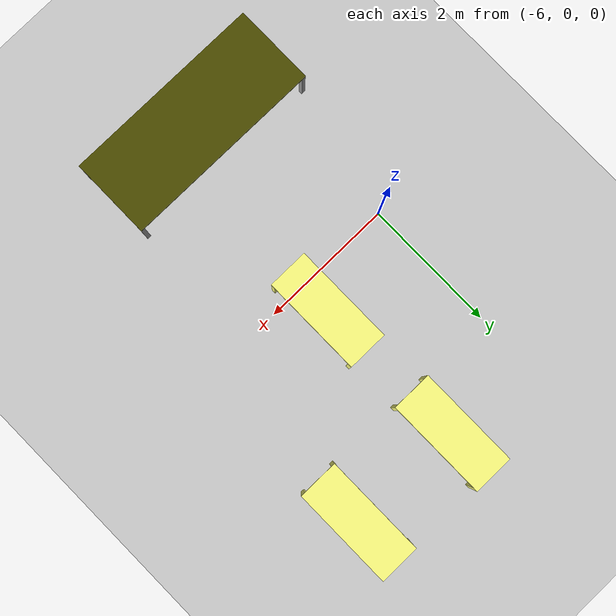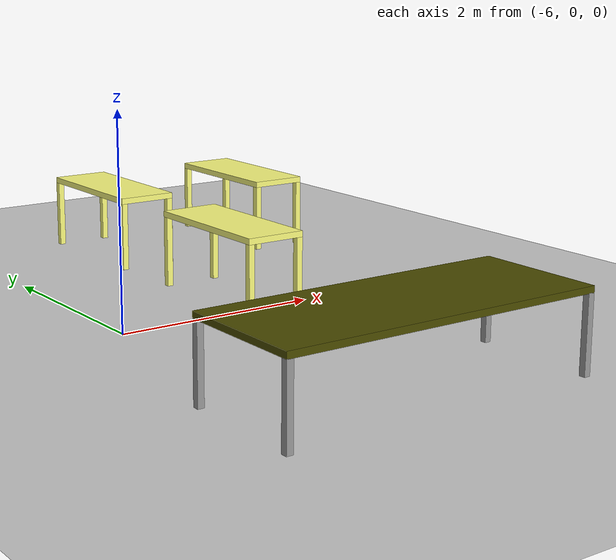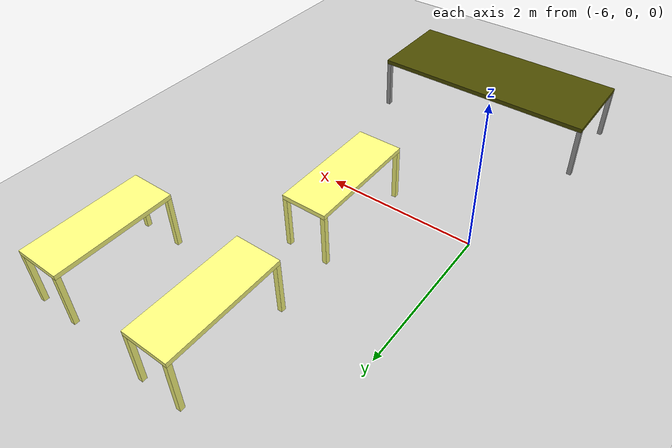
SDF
<sdf version="1.6">
 <world name="default">
  <model name="ground_plane">
   <static>1</static>
   <link name="link">
    <collision name="collision">
     <geometry><plane><normal>0 0 1</normal><size>100 100</size></plane></geometry>
     <surface><friction><ode><mu>100</mu><mu2>50</mu2></ode></friction></surface>
    </collision>
    <visual name="visual">
     <cast_shadows>0</cast_shadows>
     <geometry><plane><normal>0 0 1</normal><size>100 100</size></plane></geometry>
     <material>
      <script><uri>file://media/materials/scripts/gazebo.material</uri><name>Gazebo/Grey</name></script>
     </material>
    </visual>
   </link>
  </model>
  <model name="table_clone_0">
   <link name="link_0">
    <pose>0 2e-06 0.304 0 -0 0</pose>
    <inertial>
     <mass>1</mass>
     <inertia>
      <ixx>0.166667</ixx>
      <ixy>0</ixy>
      <ixz>0</ixz>
      <iyy>0.166667</iyy>
      <iyz>0</iyz>
      <izz>0.166667</izz>
     </inertia>
    </inertial>
    <visual name="visual">
     <geometry><box><size>0.6 1.5 0.06</size></box></geometry>
     <material>
      <lighting>1</lighting>
      <script><uri>file://media/materials/scripts/gazebo.material</uri><name>Gazebo/Grey</name></script>
      <shader type="pixel"><normal_map>__default__</normal_map></shader>
      <ambient>1 1 0.5 1</ambient>
      <diffuse>0.7 0.7 0.7 1</diffuse>
      <specular>0.01 0.01 0.01 1</specular>
      <emissive>0 0 0 1</emissive>
     </material>
    </visual>
    <collision name="collision">
     <geometry><box><size>0.6 1.5 0.06</size></box></geometry>
     <surface>
      <friction>
       <ode><mu>1</mu><mu2>1</mu2><fdir1>0 0 0</fdir1><slip1>0</slip1><slip2>0</slip2></ode>
       <torsional>
        <coefficient>1</coefficient>
        <patch_radius>0</patch_radius>
        <surface_radius>0</surface_radius>
        <use_patch_radius>1</use_patch_radius>
        <ode><slip>0</slip></ode>
       </torsional>
      </friction>
      <bounce><restitution_coefficient>0</restitution_coefficient><threshold>1e+06</threshold></bounce>
      <contact>
       <collide_without_contact>0</collide_without_contact>
       <collide_without_contact_bitmask>1</collide_without_contact_bitmask>
       <collide_bitmask>1</collide_bitmask>
       <ode>
        <soft_cfm>0</soft_cfm>
        <soft_erp>0.2</soft_erp>
        <kp>1e+13</kp>
        <kd>1</kd>
        <max_vel>0.01</max_vel>
        <min_depth>0</min_depth>
       </ode>
       <bullet>
        <split_impulse>1</split_impulse>
        <split_impulse_penetration_threshold>-0.01</split_impulse_penetration_threshold>
        <soft_cfm>0</soft_cfm>
        <soft_erp>0.2</soft_erp>
        <kp>1e+13</kp>
        <kd>1</kd>
       </bullet>
      </contact>
     </surface>
    </collision>
   </link>
   <link name="link_1">
    <pose>0.27 -0.719998 -0.076 0 -0 0</pose>
    <inertial>
     <mass>1</mass>
     <inertia>
      <ixx>0.166667</ixx>
      <ixy>0</ixy>
      <ixz>0</ixz>
      <iyy>0.166667</iyy>
      <iyz>0</iyz>
      <izz>0.166667</izz>
     </inertia>
    </inertial>
    <visual name="visual">
     <geometry><box><size>0.06 0.06 0.7</size></box></geometry>
     <material>
      <lighting>1</lighting>
      <script><uri>file://media/materials/scripts/gazebo.material</uri><name>Gazebo/Grey</name></script>
      <shader type="pixel"><normal_map>__default__</normal_map></shader>
      <ambient>1 1 0.5 1</ambient>
      <diffuse>0.7 0.7 0.7 1</diffuse>
      <specular>0.01 0.01 0.01 1</specular>
      <emissive>0 0 0 1</emissive>
     </material>
    </visual>
    <collision name="collision">
     <geometry><box><size>0.06 0.06 0.7</size></box></geometry>
     <surface>
      <friction>
       <ode><mu>1</mu><mu2>1</mu2><fdir1>0 0 0</fdir1><slip1>0</slip1><slip2>0</slip2></ode>
       <torsional>
        <coefficient>1</coefficient>
        <patch_radius>0</patch_radius>
        <surface_radius>0</surface_radius>
        <use_patch_radius>1</use_patch_radius>
        <ode><slip>0</slip></ode>
       </torsional>
      </friction>
      <bounce><restitution_coefficient>0</restitution_coefficient><threshold>1e+06</threshold></bounce>
      <contact>
       <collide_without_contact>0</collide_without_contact>
       <collide_without_contact_bitmask>1</collide_without_contact_bitmask>
       <collide_bitmask>1</collide_bitmask>
       <ode>
        <soft_cfm>0</soft_cfm>
        <soft_erp>0.2</soft_erp>
        <kp>1e+13</kp>
        <kd>1</kd>
        <max_vel>0.01</max_vel>
        <min_depth>0</min_depth>
       </ode>
       <bullet>
        <split_impulse>1</split_impulse>
        <split_impulse_penetration_threshold>-0.01</split_impulse_penetration_threshold>
        <soft_cfm>0</soft_cfm>
        <soft_erp>0.2</soft_erp>
        <kp>1e+13</kp>
        <kd>1</kd>
       </bullet>
      </contact>
     </surface>
    </collision>
   </link>
   <link name="link_1_clone">
    <pose>-0.27 -0.719998 -0.076 0 -0 0</pose>
    <inertial>
     <mass>1</mass>
     <inertia>
      <ixx>0.166667</ixx>
      <ixy>0</ixy>
      <ixz>0</ixz>
      <iyy>0.166667</iyy>
      <iyz>0</iyz>
      <izz>0.166667</izz>
     </inertia>
    </inertial>
    <visual name="visual">
     <geometry><box><size>0.06 0.06 0.7</size></box></geometry>
     <material>
      <lighting>1</lighting>
      <script><uri>file://media/materials/scripts/gazebo.material</uri><name>Gazebo/Grey</name></script>
      <shader type="pixel"><normal_map>__default__</normal_map></shader>
      <ambient>1 1 0.5 1</ambient>
      <diffuse>0.7 0.7 0.7 1</diffuse>
      <specular>0.01 0.01 0.01 1</specular>
      <emissive>0 0 0 1</emissive>
     </material>
    </visual>
    <collision name="collision">
     <geometry><box><size>0.06 0.06 0.7</size></box></geometry>
     <surface>
      <friction>
       <ode><mu>1</mu><mu2>1</mu2><fdir1>0 0 0</fdir1><slip1>0</slip1><slip2>0</slip2></ode>
       <torsional>
        <coefficient>1</coefficient>
        <patch_radius>0</patch_radius>
        <surface_radius>0</surface_radius>
        <use_patch_radius>1</use_patch_radius>
        <ode><slip>0</slip></ode>
       </torsional>
      </friction>
      <bounce><restitution_coefficient>0</restitution_coefficient><threshold>1e+06</threshold></bounce>
      <contact>
       <collide_without_contact>0</collide_without_contact>
       <collide_without_contact_bitmask>1</collide_without_contact_bitmask>
       <collide_bitmask>1</collide_bitmask>
       <ode>
        <soft_cfm>0</soft_cfm>
        <soft_erp>0.2</soft_erp>
        <kp>1e+13</kp>
        <kd>1</kd>
        <max_vel>0.01</max_vel>
        <min_depth>0</min_depth>
       </ode>
       <bullet>
        <split_impulse>1</split_impulse>
        <split_impulse_penetration_threshold>-0.01</split_impulse_penetration_threshold>
        <soft_cfm>0</soft_cfm>
        <soft_erp>0.2</soft_erp>
        <kp>1e+13</kp>
        <kd>1</kd>
       </bullet>
      </contact>
     </surface>
    </collision>
   </link>
   <link name="link_1_clone_0">
    <pose>0.27 0.720002 -0.076 0 -0 0</pose>
    <inertial>
     <mass>1</mass>
     <inertia>
      <ixx>0.166667</ixx>
      <ixy>0</ixy>
      <ixz>0</ixz>
      <iyy>0.166667</iyy>
      <iyz>0</iyz>
      <izz>0.166667</izz>
     </inertia>
    </inertial>
    <visual name="visual">
     <geometry><box><size>0.06 0.06 0.7</size></box></geometry>
     <material>
      <lighting>1</lighting>
      <script><uri>file://media/materials/scripts/gazebo.material</uri><name>Gazebo/Grey</name></script>
      <shader type="pixel"><normal_map>__default__</normal_map></shader>
      <ambient>1 1 0.5 1</ambient>
      <diffuse>0.7 0.7 0.7 1</diffuse>
      <specular>0.01 0.01 0.01 1</specular>
      <emissive>0 0 0 1</emissive>
     </material>
    </visual>
    <collision name="collision">
     <geometry><box><size>0.06 0.06 0.7</size></box></geometry>
     <surface>
      <friction>
       <ode><mu>1</mu><mu2>1</mu2><fdir1>0 0 0</fdir1><slip1>0</slip1><slip2>0</slip2></ode>
       <torsional>
        <coefficient>1</coefficient>
        <patch_radius>0</patch_radius>
        <surface_radius>0</surface_radius>
        <use_patch_radius>1</use_patch_radius>
        <ode><slip>0</slip></ode>
       </torsional>
      </friction>
      <bounce><restitution_coefficient>0</restitution_coefficient><threshold>1e+06</threshold></bounce>
      <contact>
       <collide_without_contact>0</collide_without_contact>
       <collide_without_contact_bitmask>1</collide_without_contact_bitmask>
       <collide_bitmask>1</collide_bitmask>
       <ode>
        <soft_cfm>0</soft_cfm>
        <soft_erp>0.2</soft_erp>
        <kp>1e+13</kp>
        <kd>1</kd>
        <max_vel>0.01</max_vel>
        <min_depth>0</min_depth>
       </ode>
       <bullet>
        <split_impulse>1</split_impulse>
        <split_impulse_penetration_threshold>-0.01</split_impulse_penetration_threshold>
        <soft_cfm>0</soft_cfm>
        <soft_erp>0.2</soft_erp>
        <kp>1e+13</kp>
        <kd>1</kd>
       </bullet>
      </contact>
     </surface>
    </collision>
   </link>
   <link name="link_1_clone_1">
    <pose>-0.27 0.720002 -0.076 0 -0 0</pose>
    <inertial>
     <mass>1</mass>
     <inertia>
      <ixx>0.166667</ixx>
      <ixy>0</ixy>
      <ixz>0</ixz>
      <iyy>0.166667</iyy>
      <iyz>0</iyz>
      <izz>0.166667</izz>
     </inertia>
    </inertial>
    <visual name="visual">
     <geometry><box><size>0.06 0.06 0.7</size></box></geometry>
     <material>
      <lighting>1</lighting>
      <script><uri>file://media/materials/scripts/gazebo.material</uri><name>Gazebo/Grey</name></script>
      <shader type="pixel"><normal_map>__default__</normal_map></shader>
      <ambient>1 1 0.5 1</ambient>
      <diffuse>0.7 0.7 0.7 1</diffuse>
      <specular>0.01 0.01 0.01 1</specular>
      <emissive>0 0 0 1</emissive>
     </material>
    </visual>
    <collision name="collision">
     <geometry><box><size>0.06 0.06 0.7</size></box></geometry>
     <surface>
      <friction>
       <ode><mu>1</mu><mu2>1</mu2><fdir1>0 0 0</fdir1><slip1>0</slip1><slip2>0</slip2></ode>
       <torsional>
        <coefficient>1</coefficient>
        <patch_radius>0</patch_radius>
        <surface_radius>0</surface_radius>
        <use_patch_radius>1</use_patch_radius>
        <ode><slip>0</slip></ode>
       </torsional>
      </friction>
      <bounce><restitution_coefficient>0</restitution_coefficient><threshold>1e+06</threshold></bounce>
      <contact>
       <collide_without_contact>0</collide_without_contact>
       <collide_without_contact_bitmask>1</collide_without_contact_bitmask>
       <collide_bitmask>1</collide_bitmask>
       <ode>
        <soft_cfm>0</soft_cfm>
        <soft_erp>0.2</soft_erp>
        <kp>1e+13</kp>
        <kd>1</kd>
        <max_vel>0.01</max_vel>
        <min_depth>0</min_depth>
       </ode>
       <bullet>
        <split_impulse>1</split_impulse>
        <split_impulse_penetration_threshold>-0.01</split_impulse_penetration_threshold>
        <soft_cfm>0</soft_cfm>
        <soft_erp>0.2</soft_erp>
        <kp>1e+13</kp>
        <kd>1</kd>
       </bullet>
      </contact>
     </surface>
    </collision>
   </link>
   <joint name="link_0_JOINT_0" type="fixed">
    <parent>link_0</parent>
    <child>link_1</child>
    <physics>
     <ode><limit><cfm>0</cfm><erp>0.2</erp></limit><suspension><cfm>0</cfm><erp>0.2</erp></suspension></ode>
    </physics>
   </joint>
   <joint name="link_0_JOINT_1" type="fixed">
    <parent>link_0</parent>
    <child>link_1_clone</child>
    <physics>
     <ode><limit><cfm>0</cfm><erp>0.2</erp></limit><suspension><cfm>0</cfm><erp>0.2</erp></suspension></ode>
    </physics>
   </joint>
   <joint name="link_0_JOINT_2" type="fixed">
    <parent>link_0</parent>
    <child>link_1_clone_1</child>
    <physics>
     <ode><limit><cfm>0</cfm><erp>0.2</erp></limit><suspension><cfm>0</cfm><erp>0.2</erp></suspension></ode>
    </physics>
   </joint>
   <joint name="link_0_JOINT_3" type="fixed">
    <parent>link_0</parent>
    <child>link_1_clone_0</child>
    <physics>
     <ode><limit><cfm>0</cfm><erp>0.2</erp></limit><suspension><cfm>0</cfm><erp>0.2</erp></suspension></ode>
    </physics>
   </joint>
   <static>0</static>
   <pose>-4.55512 2.76117 0.426 -0 2e-06 -0.000236</pose>
  </model>
  <model name="table_clone_1">
   <link name="link_0">
    <pose>0 2e-06 0.304 0 -0 0</pose>
    <inertial>
     <mass>1</mass>
     <inertia>
      <ixx>0.166667</ixx>
      <ixy>0</ixy>
      <ixz>0</ixz>
      <iyy>0.166667</iyy>
      <iyz>0</iyz>
      <izz>0.166667</izz>
     </inertia>
    </inertial>
    <visual name="visual">
     <geometry><box><size>0.6 1.5 0.06</size></box></geometry>
     <material>
      <lighting>1</lighting>
      <script><uri>file://media/materials/scripts/gazebo.material</uri><name>Gazebo/Grey</name></script>
      <shader type="pixel"><normal_map>__default__</normal_map></shader>
      <ambient>1 1 0.5 1</ambient>
      <diffuse>0.7 0.7 0.7 1</diffuse>
      <specular>0.01 0.01 0.01 1</specular>
      <emissive>0 0 0 1</emissive>
     </material>
    </visual>
    <collision name="collision">
     <geometry><box><size>0.6 1.5 0.06</size></box></geometry>
     <surface>
      <friction>
       <ode><mu>1</mu><mu2>1</mu2><fdir1>0 0 0</fdir1><slip1>0</slip1><slip2>0</slip2></ode>
       <torsional>
        <coefficient>1</coefficient>
        <patch_radius>0</patch_radius>
        <surface_radius>0</surface_radius>
        <use_patch_radius>1</use_patch_radius>
        <ode><slip>0</slip></ode>
       </torsional>
      </friction>
      <bounce><restitution_coefficient>0</restitution_coefficient><threshold>1e+06</threshold></bounce>
      <contact>
       <collide_without_contact>0</collide_without_contact>
       <collide_without_contact_bitmask>1</collide_without_contact_bitmask>
       <collide_bitmask>1</collide_bitmask>
       <ode>
        <soft_cfm>0</soft_cfm>
        <soft_erp>0.2</soft_erp>
        <kp>1e+13</kp>
        <kd>1</kd>
        <max_vel>0.01</max_vel>
        <min_depth>0</min_depth>
       </ode>
       <bullet>
        <split_impulse>1</split_impulse>
        <split_impulse_penetration_threshold>-0.01</split_impulse_penetration_threshold>
        <soft_cfm>0</soft_cfm>
        <soft_erp>0.2</soft_erp>
        <kp>1e+13</kp>
        <kd>1</kd>
       </bullet>
      </contact>
     </surface>
    </collision>
   </link>
   <link name="link_1">
    <pose>0.27 -0.719998 -0.076 0 -0 0</pose>
    <inertial>
     <mass>1</mass>
     <inertia>
      <ixx>0.166667</ixx>
      <ixy>0</ixy>
      <ixz>0</ixz>
      <iyy>0.166667</iyy>
      <iyz>0</iyz>
      <izz>0.166667</izz>
     </inertia>
    </inertial>
    <visual name="visual">
     <geometry><box><size>0.06 0.06 0.7</size></box></geometry>
     <material>
      <lighting>1</lighting>
      <script><uri>file://media/materials/scripts/gazebo.material</uri><name>Gazebo/Grey</name></script>
      <shader type="pixel"><normal_map>__default__</normal_map></shader>
      <ambient>1 1 0.5 1</ambient>
      <diffuse>0.7 0.7 0.7 1</diffuse>
      <specular>0.01 0.01 0.01 1</specular>
      <emissive>0 0 0 1</emissive>
     </material>
    </visual>
    <collision name="collision">
     <geometry><box><size>0.06 0.06 0.7</size></box></geometry>
     <surface>
      <friction>
       <ode><mu>1</mu><mu2>1</mu2><fdir1>0 0 0</fdir1><slip1>0</slip1><slip2>0</slip2></ode>
       <torsional>
        <coefficient>1</coefficient>
        <patch_radius>0</patch_radius>
        <surface_radius>0</surface_radius>
        <use_patch_radius>1</use_patch_radius>
        <ode><slip>0</slip></ode>
       </torsional>
      </friction>
      <bounce><restitution_coefficient>0</restitution_coefficient><threshold>1e+06</threshold></bounce>
      <contact>
       <collide_without_contact>0</collide_without_contact>
       <collide_without_contact_bitmask>1</collide_without_contact_bitmask>
       <collide_bitmask>1</collide_bitmask>
       <ode>
        <soft_cfm>0</soft_cfm>
        <soft_erp>0.2</soft_erp>
        <kp>1e+13</kp>
        <kd>1</kd>
        <max_vel>0.01</max_vel>
        <min_depth>0</min_depth>
       </ode>
       <bullet>
        <split_impulse>1</split_impulse>
        <split_impulse_penetration_threshold>-0.01</split_impulse_penetration_threshold>
        <soft_cfm>0</soft_cfm>
        <soft_erp>0.2</soft_erp>
        <kp>1e+13</kp>
        <kd>1</kd>
       </bullet>
      </contact>
     </surface>
    </collision>
   </link>
   <link name="link_1_clone">
    <pose>-0.27 -0.719998 -0.076 0 -0 0</pose>
    <inertial>
     <mass>1</mass>
     <inertia>
      <ixx>0.166667</ixx>
      <ixy>0</ixy>
      <ixz>0</ixz>
      <iyy>0.166667</iyy>
      <iyz>0</iyz>
      <izz>0.166667</izz>
     </inertia>
    </inertial>
    <visual name="visual">
     <geometry><box><size>0.06 0.06 0.7</size></box></geometry>
     <material>
      <lighting>1</lighting>
      <script><uri>file://media/materials/scripts/gazebo.material</uri><name>Gazebo/Grey</name></script>
      <shader type="pixel"><normal_map>__default__</normal_map></shader>
      <ambient>1 1 0.5 1</ambient>
      <diffuse>0.7 0.7 0.7 1</diffuse>
      <specular>0.01 0.01 0.01 1</specular>
      <emissive>0 0 0 1</emissive>
     </material>
    </visual>
    <collision name="collision">
     <geometry><box><size>0.06 0.06 0.7</size></box></geometry>
     <surface>
      <friction>
       <ode><mu>1</mu><mu2>1</mu2><fdir1>0 0 0</fdir1><slip1>0</slip1><slip2>0</slip2></ode>
       <torsional>
        <coefficient>1</coefficient>
        <patch_radius>0</patch_radius>
        <surface_radius>0</surface_radius>
        <use_patch_radius>1</use_patch_radius>
        <ode><slip>0</slip></ode>
       </torsional>
      </friction>
      <bounce><restitution_coefficient>0</restitution_coefficient><threshold>1e+06</threshold></bounce>
      <contact>
       <collide_without_contact>0</collide_without_contact>
       <collide_without_contact_bitmask>1</collide_without_contact_bitmask>
       <collide_bitmask>1</collide_bitmask>
       <ode>
        <soft_cfm>0</soft_cfm>
        <soft_erp>0.2</soft_erp>
        <kp>1e+13</kp>
        <kd>1</kd>
        <max_vel>0.01</max_vel>
        <min_depth>0</min_depth>
       </ode>
       <bullet>
        <split_impulse>1</split_impulse>
        <split_impulse_penetration_threshold>-0.01</split_impulse_penetration_threshold>
        <soft_cfm>0</soft_cfm>
        <soft_erp>0.2</soft_erp>
        <kp>1e+13</kp>
        <kd>1</kd>
       </bullet>
      </contact>
     </surface>
    </collision>
   </link>
   <link name="link_1_clone_0">
    <pose>0.27 0.720002 -0.076 0 -0 0</pose>
    <inertial>
     <mass>1</mass>
     <inertia>
      <ixx>0.166667</ixx>
      <ixy>0</ixy>
      <ixz>0</ixz>
      <iyy>0.166667</iyy>
      <iyz>0</iyz>
      <izz>0.166667</izz>
     </inertia>
    </inertial>
    <visual name="visual">
     <geometry><box><size>0.06 0.06 0.7</size></box></geometry>
     <material>
      <lighting>1</lighting>
      <script><uri>file://media/materials/scripts/gazebo.material</uri><name>Gazebo/Grey</name></script>
      <shader type="pixel"><normal_map>__default__</normal_map></shader>
      <ambient>1 1 0.5 1</ambient>
      <diffuse>0.7 0.7 0.7 1</diffuse>
      <specular>0.01 0.01 0.01 1</specular>
      <emissive>0 0 0 1</emissive>
     </material>
    </visual>
    <collision name="collision">
     <geometry><box><size>0.06 0.06 0.7</size></box></geometry>
     <surface>
      <friction>
       <ode><mu>1</mu><mu2>1</mu2><fdir1>0 0 0</fdir1><slip1>0</slip1><slip2>0</slip2></ode>
       <torsional>
        <coefficient>1</coefficient>
        <patch_radius>0</patch_radius>
        <surface_radius>0</surface_radius>
        <use_patch_radius>1</use_patch_radius>
        <ode><slip>0</slip></ode>
       </torsional>
      </friction>
      <bounce><restitution_coefficient>0</restitution_coefficient><threshold>1e+06</threshold></bounce>
      <contact>
       <collide_without_contact>0</collide_without_contact>
       <collide_without_contact_bitmask>1</collide_without_contact_bitmask>
       <collide_bitmask>1</collide_bitmask>
       <ode>
        <soft_cfm>0</soft_cfm>
        <soft_erp>0.2</soft_erp>
        <kp>1e+13</kp>
        <kd>1</kd>
        <max_vel>0.01</max_vel>
        <min_depth>0</min_depth>
       </ode>
       <bullet>
        <split_impulse>1</split_impulse>
        <split_impulse_penetration_threshold>-0.01</split_impulse_penetration_threshold>
        <soft_cfm>0</soft_cfm>
        <soft_erp>0.2</soft_erp>
        <kp>1e+13</kp>
        <kd>1</kd>
       </bullet>
      </contact>
     </surface>
    </collision>
   </link>
   <link name="link_1_clone_1">
    <pose>-0.27 0.720002 -0.076 0 -0 0</pose>
    <inertial>
     <mass>1</mass>
     <inertia>
      <ixx>0.166667</ixx>
      <ixy>0</ixy>
      <ixz>0</ixz>
      <iyy>0.166667</iyy>
      <iyz>0</iyz>
      <izz>0.166667</izz>
     </inertia>
    </inertial>
    <visual name="visual">
     <geometry><box><size>0.06 0.06 0.7</size></box></geometry>
     <material>
      <lighting>1</lighting>
      <script><uri>file://media/materials/scripts/gazebo.material</uri><name>Gazebo/Grey</name></script>
      <shader type="pixel"><normal_map>__default__</normal_map></shader>
      <ambient>1 1 0.5 1</ambient>
      <diffuse>0.7 0.7 0.7 1</diffuse>
      <specular>0.01 0.01 0.01 1</specular>
      <emissive>0 0 0 1</emissive>
     </material>
    </visual>
    <collision name="collision">
     <geometry><box><size>0.06 0.06 0.7</size></box></geometry>
     <surface>
      <friction>
       <ode><mu>1</mu><mu2>1</mu2><fdir1>0 0 0</fdir1><slip1>0</slip1><slip2>0</slip2></ode>
       <torsional>
        <coefficient>1</coefficient>
        <patch_radius>0</patch_radius>
        <surface_radius>0</surface_radius>
        <use_patch_radius>1</use_patch_radius>
        <ode><slip>0</slip></ode>
       </torsional>
      </friction>
      <bounce><restitution_coefficient>0</restitution_coefficient><threshold>1e+06</threshold></bounce>
      <contact>
       <collide_without_contact>0</collide_without_contact>
       <collide_without_contact_bitmask>1</collide_without_contact_bitmask>
       <collide_bitmask>1</collide_bitmask>
       <ode>
        <soft_cfm>0</soft_cfm>
        <soft_erp>0.2</soft_erp>
        <kp>1e+13</kp>
        <kd>1</kd>
        <max_vel>0.01</max_vel>
        <min_depth>0</min_depth>
       </ode>
       <bullet>
        <split_impulse>1</split_impulse>
        <split_impulse_penetration_threshold>-0.01</split_impulse_penetration_threshold>
        <soft_cfm>0</soft_cfm>
        <soft_erp>0.2</soft_erp>
        <kp>1e+13</kp>
        <kd>1</kd>
       </bullet>
      </contact>
     </surface>
    </collision>
   </link>
   <joint name="link_0_JOINT_0" type="fixed">
    <parent>link_0</parent>
    <child>link_1</child>
    <physics>
     <ode><limit><cfm>0</cfm><erp>0.2</erp></limit><suspension><cfm>0</cfm><erp>0.2</erp></suspension></ode>
    </physics>
   </joint>
   <joint name="link_0_JOINT_1" type="fixed">
    <parent>link_0</parent>
    <child>link_1_clone</child>
    <physics>
     <ode><limit><cfm>0</cfm><erp>0.2</erp></limit><suspension><cfm>0</cfm><erp>0.2</erp></suspension></ode>
    </physics>
   </joint>
   <joint name="link_0_JOINT_2" type="fixed">
    <parent>link_0</parent>
    <child>link_1_clone_1</child>
    <physics>
     <ode><limit><cfm>0</cfm><erp>0.2</erp></limit><suspension><cfm>0</cfm><erp>0.2</erp></suspension></ode>
    </physics>
   </joint>
   <joint name="link_0_JOINT_3" type="fixed">
    <parent>link_0</parent>
    <child>link_1_clone_0</child>
    <physics>
     <ode><limit><cfm>0</cfm><erp>0.2</erp></limit><suspension><cfm>0</cfm><erp>0.2</erp></suspension></ode>
    </physics>
   </joint>
   <static>0</static>
   <pose>-2.89017 2.72593 0.426 -0 2e-06 -0.000236</pose>
  </model>
  <model name="table_clone_4">
   <link name="link_0">
    <pose>0 2e-06 0.304 0 -0 0</pose>
    <inertial>
     <mass>1</mass>
     <inertia>
      <ixx>0.166667</ixx>
      <ixy>0</ixy>
      <ixz>0</ixz>
      <iyy>0.166667</iyy>
      <iyz>0</iyz>
      <izz>0.166667</izz>
     </inertia>
    </inertial>
    <visual name="visual">
     <geometry><box><size>0.6 1.5 0.06</size></box></geometry>
     <material>
      <lighting>1</lighting>
      <script><uri>file://media/materials/scripts/gazebo.material</uri><name>Gazebo/Grey</name></script>
      <shader type="pixel"><normal_map>__default__</normal_map></shader>
      <ambient>1 1 0.5 1</ambient>
      <diffuse>0.7 0.7 0.7 1</diffuse>
      <specular>0.01 0.01 0.01 1</specular>
      <emissive>0 0 0 1</emissive>
     </material>
    </visual>
    <collision name="collision">
     <geometry><box><size>0.6 1.5 0.06</size></box></geometry>
     <surface>
      <friction>
       <ode><mu>1</mu><mu2>1</mu2><fdir1>0 0 0</fdir1><slip1>0</slip1><slip2>0</slip2></ode>
       <torsional>
        <coefficient>1</coefficient>
        <patch_radius>0</patch_radius>
        <surface_radius>0</surface_radius>
        <use_patch_radius>1</use_patch_radius>
        <ode><slip>0</slip></ode>
       </torsional>
      </friction>
      <bounce><restitution_coefficient>0</restitution_coefficient><threshold>1e+06</threshold></bounce>
      <contact>
       <collide_without_contact>0</collide_without_contact>
       <collide_without_contact_bitmask>1</collide_without_contact_bitmask>
       <collide_bitmask>1</collide_bitmask>
       <ode>
        <soft_cfm>0</soft_cfm>
        <soft_erp>0.2</soft_erp>
        <kp>1e+13</kp>
        <kd>1</kd>
        <max_vel>0.01</max_vel>
        <min_depth>0</min_depth>
       </ode>
       <bullet>
        <split_impulse>1</split_impulse>
        <split_impulse_penetration_threshold>-0.01</split_impulse_penetration_threshold>
        <soft_cfm>0</soft_cfm>
        <soft_erp>0.2</soft_erp>
        <kp>1e+13</kp>
        <kd>1</kd>
       </bullet>
      </contact>
     </surface>
    </collision>
   </link>
   <link name="link_1">
    <pose>0.27 -0.719998 -0.076 0 -0 0</pose>
    <inertial>
     <mass>1</mass>
     <inertia>
      <ixx>0.166667</ixx>
      <ixy>0</ixy>
      <ixz>0</ixz>
      <iyy>0.166667</iyy>
      <iyz>0</iyz>
      <izz>0.166667</izz>
     </inertia>
    </inertial>
    <visual name="visual">
     <geometry><box><size>0.06 0.06 0.7</size></box></geometry>
     <material>
      <lighting>1</lighting>
      <script><uri>file://media/materials/scripts/gazebo.material</uri><name>Gazebo/Grey</name></script>
      <shader type="pixel"><normal_map>__default__</normal_map></shader>
      <ambient>1 1 0.5 1</ambient>
      <diffuse>0.7 0.7 0.7 1</diffuse>
      <specular>0.01 0.01 0.01 1</specular>
      <emissive>0 0 0 1</emissive>
     </material>
    </visual>
    <collision name="collision">
     <geometry><box><size>0.06 0.06 0.7</size></box></geometry>
     <surface>
      <friction>
       <ode><mu>1</mu><mu2>1</mu2><fdir1>0 0 0</fdir1><slip1>0</slip1><slip2>0</slip2></ode>
       <torsional>
        <coefficient>1</coefficient>
        <patch_radius>0</patch_radius>
        <surface_radius>0</surface_radius>
        <use_patch_radius>1</use_patch_radius>
        <ode><slip>0</slip></ode>
       </torsional>
      </friction>
      <bounce><restitution_coefficient>0</restitution_coefficient><threshold>1e+06</threshold></bounce>
      <contact>
       <collide_without_contact>0</collide_without_contact>
       <collide_without_contact_bitmask>1</collide_without_contact_bitmask>
       <collide_bitmask>1</collide_bitmask>
       <ode>
        <soft_cfm>0</soft_cfm>
        <soft_erp>0.2</soft_erp>
        <kp>1e+13</kp>
        <kd>1</kd>
        <max_vel>0.01</max_vel>
        <min_depth>0</min_depth>
       </ode>
       <bullet>
        <split_impulse>1</split_impulse>
        <split_impulse_penetration_threshold>-0.01</split_impulse_penetration_threshold>
        <soft_cfm>0</soft_cfm>
        <soft_erp>0.2</soft_erp>
        <kp>1e+13</kp>
        <kd>1</kd>
       </bullet>
      </contact>
     </surface>
    </collision>
   </link>
   <link name="link_1_clone">
    <pose>-0.27 -0.719998 -0.076 0 -0 0</pose>
    <inertial>
     <mass>1</mass>
     <inertia>
      <ixx>0.166667</ixx>
      <ixy>0</ixy>
      <ixz>0</ixz>
      <iyy>0.166667</iyy>
      <iyz>0</iyz>
      <izz>0.166667</izz>
     </inertia>
    </inertial>
    <visual name="visual">
     <geometry><box><size>0.06 0.06 0.7</size></box></geometry>
     <material>
      <lighting>1</lighting>
      <script><uri>file://media/materials/scripts/gazebo.material</uri><name>Gazebo/Grey</name></script>
      <shader type="pixel"><normal_map>__default__</normal_map></shader>
      <ambient>1 1 0.5 1</ambient>
      <diffuse>0.7 0.7 0.7 1</diffuse>
      <specular>0.01 0.01 0.01 1</specular>
      <emissive>0 0 0 1</emissive>
     </material>
    </visual>
    <collision name="collision">
     <geometry><box><size>0.06 0.06 0.7</size></box></geometry>
     <surface>
      <friction>
       <ode><mu>1</mu><mu2>1</mu2><fdir1>0 0 0</fdir1><slip1>0</slip1><slip2>0</slip2></ode>
       <torsional>
        <coefficient>1</coefficient>
        <patch_radius>0</patch_radius>
        <surface_radius>0</surface_radius>
        <use_patch_radius>1</use_patch_radius>
        <ode><slip>0</slip></ode>
       </torsional>
      </friction>
      <bounce><restitution_coefficient>0</restitution_coefficient><threshold>1e+06</threshold></bounce>
      <contact>
       <collide_without_contact>0</collide_without_contact>
       <collide_without_contact_bitmask>1</collide_without_contact_bitmask>
       <collide_bitmask>1</collide_bitmask>
       <ode>
        <soft_cfm>0</soft_cfm>
        <soft_erp>0.2</soft_erp>
        <kp>1e+13</kp>
        <kd>1</kd>
        <max_vel>0.01</max_vel>
        <min_depth>0</min_depth>
       </ode>
       <bullet>
        <split_impulse>1</split_impulse>
        <split_impulse_penetration_threshold>-0.01</split_impulse_penetration_threshold>
        <soft_cfm>0</soft_cfm>
        <soft_erp>0.2</soft_erp>
        <kp>1e+13</kp>
        <kd>1</kd>
       </bullet>
      </contact>
     </surface>
    </collision>
   </link>
   <link name="link_1_clone_0">
    <pose>0.27 0.720002 -0.076 0 -0 0</pose>
    <inertial>
     <mass>1</mass>
     <inertia>
      <ixx>0.166667</ixx>
      <ixy>0</ixy>
      <ixz>0</ixz>
      <iyy>0.166667</iyy>
      <iyz>0</iyz>
      <izz>0.166667</izz>
     </inertia>
    </inertial>
    <visual name="visual">
     <geometry><box><size>0.06 0.06 0.7</size></box></geometry>
     <material>
      <lighting>1</lighting>
      <script><uri>file://media/materials/scripts/gazebo.material</uri><name>Gazebo/Grey</name></script>
      <shader type="pixel"><normal_map>__default__</normal_map></shader>
      <ambient>1 1 0.5 1</ambient>
      <diffuse>0.7 0.7 0.7 1</diffuse>
      <specular>0.01 0.01 0.01 1</specular>
      <emissive>0 0 0 1</emissive>
     </material>
    </visual>
    <collision name="collision">
     <geometry><box><size>0.06 0.06 0.7</size></box></geometry>
     <surface>
      <friction>
       <ode><mu>1</mu><mu2>1</mu2><fdir1>0 0 0</fdir1><slip1>0</slip1><slip2>0</slip2></ode>
       <torsional>
        <coefficient>1</coefficient>
        <patch_radius>0</patch_radius>
        <surface_radius>0</surface_radius>
        <use_patch_radius>1</use_patch_radius>
        <ode><slip>0</slip></ode>
       </torsional>
      </friction>
      <bounce><restitution_coefficient>0</restitution_coefficient><threshold>1e+06</threshold></bounce>
      <contact>
       <collide_without_contact>0</collide_without_contact>
       <collide_without_contact_bitmask>1</collide_without_contact_bitmask>
       <collide_bitmask>1</collide_bitmask>
       <ode>
        <soft_cfm>0</soft_cfm>
        <soft_erp>0.2</soft_erp>
        <kp>1e+13</kp>
        <kd>1</kd>
        <max_vel>0.01</max_vel>
        <min_depth>0</min_depth>
       </ode>
       <bullet>
        <split_impulse>1</split_impulse>
        <split_impulse_penetration_threshold>-0.01</split_impulse_penetration_threshold>
        <soft_cfm>0</soft_cfm>
        <soft_erp>0.2</soft_erp>
        <kp>1e+13</kp>
        <kd>1</kd>
       </bullet>
      </contact>
     </surface>
    </collision>
   </link>
   <link name="link_1_clone_1">
    <pose>-0.27 0.720002 -0.076 0 -0 0</pose>
    <inertial>
     <mass>1</mass>
     <inertia>
      <ixx>0.166667</ixx>
      <ixy>0</ixy>
      <ixz>0</ixz>
      <iyy>0.166667</iyy>
      <iyz>0</iyz>
      <izz>0.166667</izz>
     </inertia>
    </inertial>
    <visual name="visual">
     <geometry><box><size>0.06 0.06 0.7</size></box></geometry>
     <material>
      <lighting>1</lighting>
      <script><uri>file://media/materials/scripts/gazebo.material</uri><name>Gazebo/Grey</name></script>
      <shader type="pixel"><normal_map>__default__</normal_map></shader>
      <ambient>1 1 0.5 1</ambient>
      <diffuse>0.7 0.7 0.7 1</diffuse>
      <specular>0.01 0.01 0.01 1</specular>
      <emissive>0 0 0 1</emissive>
     </material>
    </visual>
    <collision name="collision">
     <geometry><box><size>0.06 0.06 0.7</size></box></geometry>
     <surface>
      <friction>
       <ode><mu>1</mu><mu2>1</mu2><fdir1>0 0 0</fdir1><slip1>0</slip1><slip2>0</slip2></ode>
       <torsional>
        <coefficient>1</coefficient>
        <patch_radius>0</patch_radius>
        <surface_radius>0</surface_radius>
        <use_patch_radius>1</use_patch_radius>
        <ode><slip>0</slip></ode>
       </torsional>
      </friction>
      <bounce><restitution_coefficient>0</restitution_coefficient><threshold>1e+06</threshold></bounce>
      <contact>
       <collide_without_contact>0</collide_without_contact>
       <collide_without_contact_bitmask>1</collide_without_contact_bitmask>
       <collide_bitmask>1</collide_bitmask>
       <ode>
        <soft_cfm>0</soft_cfm>
        <soft_erp>0.2</soft_erp>
        <kp>1e+13</kp>
        <kd>1</kd>
        <max_vel>0.01</max_vel>
        <min_depth>0</min_depth>
       </ode>
       <bullet>
        <split_impulse>1</split_impulse>
        <split_impulse_penetration_threshold>-0.01</split_impulse_penetration_threshold>
        <soft_cfm>0</soft_cfm>
        <soft_erp>0.2</soft_erp>
        <kp>1e+13</kp>
        <kd>1</kd>
       </bullet>
      </contact>
     </surface>
    </collision>
   </link>
   <joint name="link_0_JOINT_0" type="fixed">
    <parent>link_0</parent>
    <child>link_1</child>
    <physics>
     <ode><limit><cfm>0</cfm><erp>0.2</erp></limit><suspension><cfm>0</cfm><erp>0.2</erp></suspension></ode>
    </physics>
   </joint>
   <joint name="link_0_JOINT_1" type="fixed">
    <parent>link_0</parent>
    <child>link_1_clone</child>
    <physics>
     <ode><limit><cfm>0</cfm><erp>0.2</erp></limit><suspension><cfm>0</cfm><erp>0.2</erp></suspension></ode>
    </physics>
   </joint>
   <joint name="link_0_JOINT_2" type="fixed">
    <parent>link_0</parent>
    <child>link_1_clone_1</child>
    <physics>
     <ode><limit><cfm>0</cfm><erp>0.2</erp></limit><suspension><cfm>0</cfm><erp>0.2</erp></suspension></ode>
    </physics>
   </joint>
   <joint name="link_0_JOINT_3" type="fixed">
    <parent>link_0</parent>
    <child>link_1_clone_0</child>
    <physics>
     <ode><limit><cfm>0</cfm><erp>0.2</erp></limit><suspension><cfm>0</cfm><erp>0.2</erp></suspension></ode>
    </physics>
   </joint>
   <static>0</static>
   <pose>-4.51523 0.495123 0.426 0 -1e-06 -0.000237</pose>
  </model>
  <model name="bigtable_0">
   <link name="link_0">
    <pose>0 0 0.3 0 -0 0</pose>
    <inertial>
     <mass>1</mass>
     <inertia>
      <ixx>0.166667</ixx>
      <ixy>0</ixy>
      <ixz>0</ixz>
      <iyy>0.166667</iyy>
      <iyz>0</iyz>
      <izz>0.166667</izz>
     </inertia>
    </inertial>
    <visual name="visual">
     <geometry><box><size>1.2 3 0.06</size></box></geometry>
     <material>
      <lighting>1</lighting>
      <script><uri>file://media/materials/scripts/gazebo.material</uri><name>Gazebo/Grey</name></script>
      <shader type="pixel"><normal_map>__default__</normal_map></shader>
      <ambient>0.3 0.3 0 1</ambient>
      <diffuse>0.7 0.7 0.7 1</diffuse>
      <specular>0.01 0.01 0.01 1</specular>
      <emissive>0 0 0 1</emissive>
     </material>
    </visual>
    <collision name="collision">
     <geometry><box><size>1.2 3 0.06</size></box></geometry>
     <surface>
      <friction>
       <ode><mu>1</mu><mu2>1</mu2><fdir1>0 0 0</fdir1><slip1>0</slip1><slip2>0</slip2></ode>
       <torsional>
        <coefficient>1</coefficient>
        <patch_radius>0</patch_radius>
        <surface_radius>0</surface_radius>
        <use_patch_radius>1</use_patch_radius>
        <ode><slip>0</slip></ode>
       </torsional>
      </friction>
      <bounce><restitution_coefficient>0</restitution_coefficient><threshold>1e+06</threshold></bounce>
      <contact>
       <collide_without_contact>0</collide_without_contact>
       <collide_without_contact_bitmask>1</collide_without_contact_bitmask>
       <collide_bitmask>1</collide_bitmask>
       <ode>
        <soft_cfm>0</soft_cfm>
        <soft_erp>0.2</soft_erp>
        <kp>1e+13</kp>
        <kd>1</kd>
        <max_vel>0.01</max_vel>
        <min_depth>0</min_depth>
       </ode>
       <bullet>
        <split_impulse>1</split_impulse>
        <split_impulse_penetration_threshold>-0.01</split_impulse_penetration_threshold>
        <soft_cfm>0</soft_cfm>
        <soft_erp>0.2</soft_erp>
        <kp>1e+13</kp>
        <kd>1</kd>
       </bullet>
      </contact>
     </surface>
    </collision>
   </link>
   <link name="link_1">
    <pose>-0.57 -1.47 -0.076 0 -0 0</pose>
    <inertial>
     <mass>1</mass>
     <inertia>
      <ixx>0.166667</ixx>
      <ixy>0</ixy>
      <ixz>0</ixz>
      <iyy>0.166667</iyy>
      <iyz>0</iyz>
      <izz>0.166667</izz>
     </inertia>
    </inertial>
    <visual name="visual">
     <geometry><box><size>0.06 0.06 0.7</size></box></geometry>
     <material>
      <lighting>1</lighting>
      <script><uri>file://media/materials/scripts/gazebo.material</uri><name>Gazebo/Grey</name></script>
      <shader type="pixel"><normal_map>__default__</normal_map></shader>
      <ambient>0.3 0.3 0.3 1</ambient>
      <diffuse>0.7 0.7 0.7 1</diffuse>
      <specular>0.01 0.01 0.01 1</specular>
      <emissive>0 0 0 1</emissive>
     </material>
    </visual>
    <collision name="collision">
     <geometry><box><size>0.06 0.06 0.7</size></box></geometry>
     <surface>
      <friction>
       <ode><mu>1</mu><mu2>1</mu2><fdir1>0 0 0</fdir1><slip1>0</slip1><slip2>0</slip2></ode>
       <torsional>
        <coefficient>1</coefficient>
        <patch_radius>0</patch_radius>
        <surface_radius>0</surface_radius>
        <use_patch_radius>1</use_patch_radius>
        <ode><slip>0</slip></ode>
       </torsional>
      </friction>
      <bounce><restitution_coefficient>0</restitution_coefficient><threshold>1e+06</threshold></bounce>
      <contact>
       <collide_without_contact>0</collide_without_contact>
       <collide_without_contact_bitmask>1</collide_without_contact_bitmask>
       <collide_bitmask>1</collide_bitmask>
       <ode>
        <soft_cfm>0</soft_cfm>
        <soft_erp>0.2</soft_erp>
        <kp>1e+13</kp>
        <kd>1</kd>
        <max_vel>0.01</max_vel>
        <min_depth>0</min_depth>
       </ode>
       <bullet>
        <split_impulse>1</split_impulse>
        <split_impulse_penetration_threshold>-0.01</split_impulse_penetration_threshold>
        <soft_cfm>0</soft_cfm>
        <soft_erp>0.2</soft_erp>
        <kp>1e+13</kp>
        <kd>1</kd>
       </bullet>
      </contact>
     </surface>
    </collision>
   </link>
   <link name="link_1_clone">
    <pose>0.57 -1.47 -0.076 0 -0 0</pose>
    <inertial>
     <mass>1</mass>
     <inertia>
      <ixx>0.166667</ixx>
      <ixy>0</ixy>
      <ixz>0</ixz>
      <iyy>0.166667</iyy>
      <iyz>0</iyz>
      <izz>0.166667</izz>
     </inertia>
    </inertial>
    <visual name="visual">
     <geometry><box><size>0.06 0.06 0.7</size></box></geometry>
     <material>
      <lighting>1</lighting>
      <script><uri>file://media/materials/scripts/gazebo.material</uri><name>Gazebo/Grey</name></script>
      <shader type="pixel"><normal_map>__default__</normal_map></shader>
      <ambient>0.3 0.3 0.3 1</ambient>
      <diffuse>0.7 0.7 0.7 1</diffuse>
      <specular>0.01 0.01 0.01 1</specular>
      <emissive>0 0 0 1</emissive>
     </material>
    </visual>
    <collision name="collision">
     <geometry><box><size>0.06 0.06 0.7</size></box></geometry>
     <surface>
      <friction>
       <ode><mu>1</mu><mu2>1</mu2><fdir1>0 0 0</fdir1><slip1>0</slip1><slip2>0</slip2></ode>
       <torsional>
        <coefficient>1</coefficient>
        <patch_radius>0</patch_radius>
        <surface_radius>0</surface_radius>
        <use_patch_radius>1</use_patch_radius>
        <ode><slip>0</slip></ode>
       </torsional>
      </friction>
      <bounce><restitution_coefficient>0</restitution_coefficient><threshold>1e+06</threshold></bounce>
      <contact>
       <collide_without_contact>0</collide_without_contact>
       <collide_without_contact_bitmask>1</collide_without_contact_bitmask>
       <collide_bitmask>1</collide_bitmask>
       <ode>
        <soft_cfm>0</soft_cfm>
        <soft_erp>0.2</soft_erp>
        <kp>1e+13</kp>
        <kd>1</kd>
        <max_vel>0.01</max_vel>
        <min_depth>0</min_depth>
       </ode>
       <bullet>
        <split_impulse>1</split_impulse>
        <split_impulse_penetration_threshold>-0.01</split_impulse_penetration_threshold>
        <soft_cfm>0</soft_cfm>
        <soft_erp>0.2</soft_erp>
        <kp>1e+13</kp>
        <kd>1</kd>
       </bullet>
      </contact>
     </surface>
    </collision>
   </link>
   <link name="link_1_clone_0">
    <pose>0.57 1.47 -0.076 0 -0 0</pose>
    <inertial>
     <mass>1</mass>
     <inertia>
      <ixx>0.166667</ixx>
      <ixy>0</ixy>
      <ixz>0</ixz>
      <iyy>0.166667</iyy>
      <iyz>0</iyz>
      <izz>0.166667</izz>
     </inertia>
    </inertial>
    <visual name="visual">
     <geometry><box><size>0.06 0.06 0.7</size></box></geometry>
     <material>
      <lighting>1</lighting>
      <script><uri>file://media/materials/scripts/gazebo.material</uri><name>Gazebo/Grey</name></script>
      <shader type="pixel"><normal_map>__default__</normal_map></shader>
      <ambient>0.3 0.3 0.3 1</ambient>
      <diffuse>0.7 0.7 0.7 1</diffuse>
      <specular>0.01 0.01 0.01 1</specular>
      <emissive>0 0 0 1</emissive>
     </material>
    </visual>
    <collision name="collision">
     <geometry><box><size>0.06 0.06 0.7</size></box></geometry>
     <surface>
      <friction>
       <ode><mu>1</mu><mu2>1</mu2><fdir1>0 0 0</fdir1><slip1>0</slip1><slip2>0</slip2></ode>
       <torsional>
        <coefficient>1</coefficient>
        <patch_radius>0</patch_radius>
        <surface_radius>0</surface_radius>
        <use_patch_radius>1</use_patch_radius>
        <ode><slip>0</slip></ode>
       </torsional>
      </friction>
      <bounce><restitution_coefficient>0</restitution_coefficient><threshold>1e+06</threshold></bounce>
      <contact>
       <collide_without_contact>0</collide_without_contact>
       <collide_without_contact_bitmask>1</collide_without_contact_bitmask>
       <collide_bitmask>1</collide_bitmask>
       <ode>
        <soft_cfm>0</soft_cfm>
        <soft_erp>0.2</soft_erp>
        <kp>1e+13</kp>
        <kd>1</kd>
        <max_vel>0.01</max_vel>
        <min_depth>0</min_depth>
       </ode>
       <bullet>
        <split_impulse>1</split_impulse>
        <split_impulse_penetration_threshold>-0.01</split_impulse_penetration_threshold>
        <soft_cfm>0</soft_cfm>
        <soft_erp>0.2</soft_erp>
        <kp>1e+13</kp>
        <kd>1</kd>
       </bullet>
      </contact>
     </surface>
    </collision>
   </link>
   <link name="link_1_clone_1">
    <pose>-0.57 1.47 -0.076 0 -0 0</pose>
    <inertial>
     <mass>1</mass>
     <inertia>
      <ixx>0.166667</ixx>
      <ixy>0</ixy>
      <ixz>0</ixz>
      <iyy>0.166667</iyy>
      <iyz>0</iyz>
      <izz>0.166667</izz>
     </inertia>
    </inertial>
    <visual name="visual">
     <geometry><box><size>0.06 0.06 0.7</size></box></geometry>
     <material>
      <lighting>1</lighting>
      <script><uri>file://media/materials/scripts/gazebo.material</uri><name>Gazebo/Grey</name></script>
      <shader type="pixel"><normal_map>__default__</normal_map></shader>
      <ambient>0.3 0.3 0.3 1</ambient>
      <diffuse>0.7 0.7 0.7 1</diffuse>
      <specular>0.01 0.01 0.01 1</specular>
      <emissive>0 0 0 1</emissive>
     </material>
    </visual>
    <collision name="collision">
     <geometry><box><size>0.06 0.06 0.7</size></box></geometry>
     <surface>
      <friction>
       <ode><mu>1</mu><mu2>1</mu2><fdir1>0 0 0</fdir1><slip1>0</slip1><slip2>0</slip2></ode>
       <torsional>
        <coefficient>1</coefficient>
        <patch_radius>0</patch_radius>
        <surface_radius>0</surface_radius>
        <use_patch_radius>1</use_patch_radius>
        <ode><slip>0</slip></ode>
       </torsional>
      </friction>
      <bounce><restitution_coefficient>0</restitution_coefficient><threshold>1e+06</threshold></bounce>
      <contact>
       <collide_without_contact>0</collide_without_contact>
       <collide_without_contact_bitmask>1</collide_without_contact_bitmask>
       <collide_bitmask>1</collide_bitmask>
       <ode>
        <soft_cfm>0</soft_cfm>
        <soft_erp>0.2</soft_erp>
        <kp>1e+13</kp>
        <kd>1</kd>
        <max_vel>0.01</max_vel>
        <min_depth>0</min_depth>
       </ode>
       <bullet>
        <split_impulse>1</split_impulse>
        <split_impulse_penetration_threshold>-0.01</split_impulse_penetration_threshold>
        <soft_cfm>0</soft_cfm>
        <soft_erp>0.2</soft_erp>
        <kp>1e+13</kp>
        <kd>1</kd>
       </bullet>
      </contact>
     </surface>
    </collision>
   </link>
   <joint name="link_0_JOINT_0" type="screw">
    <parent>link_0</parent>
    <child>link_1</child>
    <pose>0 0 0.35 0 -0 0</pose>
    <axis>
     <xyz>0 0 1</xyz>
     <use_parent_model_frame>0</use_parent_model_frame>
     <limit><lower>-1e+16</lower><upper>1e+16</upper><effort>-1</effort><velocity>-1</velocity></limit>
     <dynamics>
      <spring_reference>0</spring_reference>
      <spring_stiffness>0</spring_stiffness>
      <damping>0</damping>
      <friction>0</friction>
     </dynamics>
    </axis>
    <physics>
     <ode><limit><cfm>0</cfm><erp>0.2</erp></limit><suspension><cfm>0</cfm><erp>0.2</erp></suspension></ode>
    </physics>
    <thread_pitch>1</thread_pitch>
   </joint>
   <joint name="link_0_JOINT_1" type="fixed">
    <parent>link_0</parent>
    <child>link_1_clone_1</child>
    <physics>
     <ode><limit><cfm>0</cfm><erp>0.2</erp></limit><suspension><cfm>0</cfm><erp>0.2</erp></suspension></ode>
    </physics>
   </joint>
   <joint name="link_0_JOINT_2" type="fixed">
    <parent>link_0</parent>
    <child>link_1_clone</child>
    <physics>
     <ode><limit><cfm>0</cfm><erp>0.2</erp></limit><suspension><cfm>0</cfm><erp>0.2</erp></suspension></ode>
    </physics>
   </joint>
   <joint name="link_0_JOINT_3" type="fixed">
    <parent>link_0</parent>
    <child>link_1_clone_0</child>
    <physics>
     <ode><limit><cfm>0</cfm><erp>0.2</erp></limit><suspension><cfm>0</cfm><erp>0.2</erp></suspension></ode>
    </physics>
   </joint>
   <static>0</static>
   <pose>-4.98842 -2.55119 0.426002 -1e-06 2e-06 -1.57591</pose>
  </model>
 </world>
</sdf>
